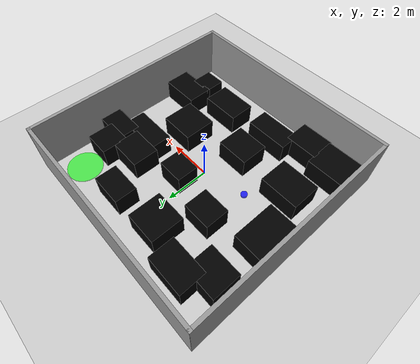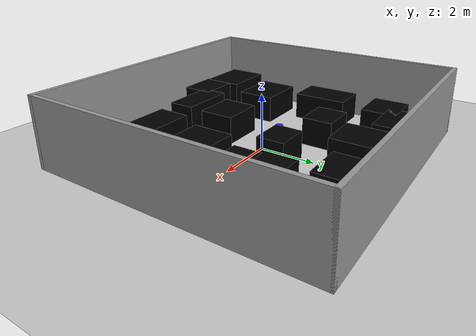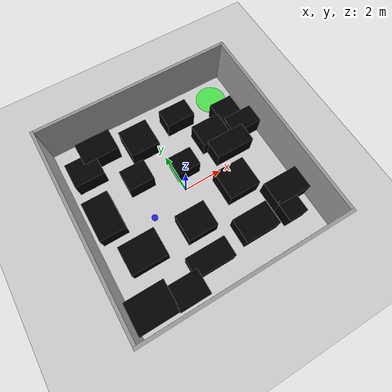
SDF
<?xml version="1.0" ?>
<sdf version="1.6">
  <world name="env_30pct_obstacles">
    <gravity>0 0 -9.8</gravity>

    <!-- Sun & Ground -->
    <include><uri>model://sun</uri></include>
    <include><uri>model://ground_plane</uri></include>

    <!-- Walls -->
    <model name="walls">
      <static>true</static>
      <link name="link">
        <!-- Bottom -->
        <collision name="bottom_collision"><geometry><box><size>10.15 0.15 2.5</size></box></geometry><pose>0 -5 1.25 0 0 0</pose></collision>
        <visual name="wall_bottom"><geometry><box><size>10.15 0.15 2.5</size></box></geometry><pose>0 -5 1.25 0 0 0</pose><material><ambient>0.6 0.6 0.6 1</ambient></material></visual>
        <!-- Top -->
        <collision name="top_collision"><geometry><box><size>10.15 0.15 2.5</size></box></geometry><pose>0 5 1.25 0 0 0</pose></collision>
        <visual name="wall_top"><geometry><box><size>10.15 0.15 2.5</size></box></geometry><pose>0 5 1.25 0 0 0</pose><material><ambient>0.6 0.6 0.6 1</ambient></material></visual>
        <!-- Left -->
        <collision name="left_collision"><geometry><box><size>0.15 10.15 2.5</size></box></geometry><pose>-5 0 1.25 0 0 0</pose></collision>
        <visual name="wall_left"><geometry><box><size>0.15 10.15 2.5</size></box></geometry><pose>-5 0 1.25 0 0 0</pose><material><ambient>0.6 0.6 0.6 1</ambient></material></visual>
        <!-- Right -->
        <collision name="right_collision"><geometry><box><size>0.15 10.15 2.5</size></box></geometry><pose>5 0 1.25 0 0 0</pose></collision>
        <visual name="wall_right"><geometry><box><size>0.15 10.15 2.5</size></box></geometry><pose>5 0 1.25 0 0 0</pose><material><ambient>0.6 0.6 0.6 1</ambient></material></visual>
      </link>
    </model>

    <!-- Start -->
    <model name="start_marker">
      <static>true</static>
      <pose>-1.99 -0.5 0.05 0 0 0</pose>
      <link name="link">
        <collision name="collision"><geometry><cylinder><radius>0.15</radius><length>0.1</length></cylinder></geometry></collision>
        <visual name="visual"><geometry><cylinder><radius>0.15</radius><length>0.1</length></cylinder></geometry><material><ambient>0 0 1 0.8</ambient></material></visual>
      </link>
    </model>

    <!-- Goal -->
    <model name="goal_region">
      <static>true</static>
      <pose>3.8 3.8 0.05 0 0 0</pose>
      <link name="link">
        <collision name="collision"><geometry><cylinder><radius>0.8</radius><length>0.05</length></cylinder></geometry></collision>
        <visual name="visual"><geometry><cylinder><radius>0.8</radius><length>0.05</length></cylinder></geometry><material><ambient>0 1 0 0.6</ambient></material></visual>
      </link>
    </model>

    <!-- Obstacles: 20 total, ~30 m² coverage, path maintained -->
    <!-- All black, solid, rectangular -->

    <!-- Lower left cluster -->
    <model name="obs0"><static>true</static><pose>-4.0 -4.0 0.5 0 0 0</pose>
      <link name="l"><collision name="c"><geometry><box><size>2.0 1.5 1.0</size></box></geometry></collision>
      <visual name="v"><geometry><box><size>2.0 1.5 1.0</size></box></geometry><material><ambient>0 0 0 1</ambient></material></visual></link></model>

    <model name="obs1"><static>true</static><pose>-2.3 -4.2 0.5 0 0 0</pose>
      <link name="l"><collision name="c"><geometry><box><size>1.5 1.2 1.0</size></box></geometry></collision>
      <visual name="v"><geometry><box><size>1.5 1.2 1.0</size></box></geometry><material><ambient>0 0 0 1</ambient></material></visual></link></model>

    <!-- Mid lower barrier -->
    <model name="obs2"><static>true</static><pose>-0.8 -3.5 0.5 0 0 0</pose>
      <link name="l"><collision name="c"><geometry><box><size>2.0 1.0 1.0</size></box></geometry></collision>
      <visual name="v"><geometry><box><size>2.0 1.0 1.0</size></box></geometry><material><ambient>0 0 0 1</ambient></material></visual></link></model>

    <model name="obs3"><static>true</static><pose>1.8 -3.2 0.5 0 0 0</pose>
      <link name="l"><collision name="c"><geometry><box><size>1.8 1.2 1.0</size></box></geometry></collision>
      <visual name="v"><geometry><box><size>1.8 1.2 1.0</size></box></geometry><material><ambient>0 0 0 1</ambient></material></visual></link></model>

    <!-- Central band, leaves diagonal corridor -->
    <model name="obs4"><static>true</static><pose>-3.2 -1.8 0.5 0 0 0</pose>
      <link name="l"><collision name="c"><geometry><box><size>1.8 1.4 1.0</size></box></geometry></collision>
      <visual name="v"><geometry><box><size>1.8 1.4 1.0</size></box></geometry><material><ambient>0 0 0 1</ambient></material></visual></link></model>

    <model name="obs5"><static>true</static><pose>-0.5 -1.8 0.5 0 0 0</pose>
      <link name="l"><collision name="c"><geometry><box><size>1.5 1.3 1.0</size></box></geometry></collision>
      <visual name="v"><geometry><box><size>1.5 1.3 1.0</size></box></geometry><material><ambient>0 0 0 1</ambient></material></visual></link></model>

    <model name="obs6"><static>true</static><pose>2.2 -1.0 0.5 0 0 0</pose>
      <link name="l"><collision name="c"><geometry><box><size>1.6 1.5 1.0</size></box></geometry></collision>
      <visual name="v"><geometry><box><size>1.6 1.5 1.0</size></box></geometry><material><ambient>0 0 0 1</ambient></material></visual></link></model>

    <model name="obs7"><static>true</static><pose>4.0 -2.5 0.5 0 0 0</pose>
      <link name="l"><collision name="c"><geometry><box><size>1.8 1.2 1.0</size></box></geometry></collision>
      <visual name="v"><geometry><box><size>1.8 1.2 1.0</size></box></geometry><material><ambient>0 0 0 1</ambient></material></visual></link></model>

    <!-- Left vertical cluster -->
    <model name="obs8"><static>true</static><pose>-4.0 0.5 0.5 0 0 0</pose>
      <link name="l"><collision name="c"><geometry><box><size>1.3 2.0 1.0</size></box></geometry></collision>
      <visual name="v"><geometry><box><size>1.3 2.0 1.0</size></box></geometry><material><ambient>0 0 0 1</ambient></material></visual></link></model>

    <model name="obs9"><static>true</static><pose>-3.8 3.0 0.5 0 0 0</pose>
      <link name="l"><collision name="c"><geometry><box><size>1.5 1.3 1.0</size></box></geometry></collision>
      <visual name="v"><geometry><box><size>1.5 1.3 1.0</size></box></geometry><material><ambient>0 0 0 1</ambient></material></visual></link></model>

    <!-- Center-right barrier -->
    <model name="obs10"><static>true</static><pose>3.0 0.8 0.5 0 0 0</pose>
      <link name="l"><collision name="c"><geometry><box><size>2.0 1.0 1.0</size></box></geometry></collision>
      <visual name="v"><geometry><box><size>2.0 1.0 1.0</size></box></geometry><material><ambient>0 0 0 1</ambient></material></visual></link></model>

    <!-- Top band (keeps diagonal open) -->
    <model name="obs11"><static>true</static><pose>-2.8 3.8 0.5 0 0 0</pose>
      <link name="l"><collision name="c"><geometry><box><size>1.8 1.2 1.0</size></box></geometry></collision>
      <visual name="v"><geometry><box><size>1.8 1.2 1.0</size></box></geometry><material><ambient>0 0 0 1</ambient></material></visual></link></model>

    <model name="obs12"><static>true</static><pose>-0.8 3.2 0.5 0 0 0</pose>
      <link name="l"><collision name="c"><geometry><box><size>1.5 1.5 1.0</size></box></geometry></collision>
      <visual name="v"><geometry><box><size>1.5 1.5 1.0</size></box></geometry><material><ambient>0 0 0 1</ambient></material></visual></link></model>

    <model name="obs13"><static>true</static><pose>1.5 3.5 0.5 0 0 0</pose>
      <link name="l"><collision name="c"><geometry><box><size>1.5 1.0 1.0</size></box></geometry></collision>
      <visual name="v"><geometry><box><size>1.5 1.0 1.0</size></box></geometry><material><ambient>0 0 0 1</ambient></material></visual></link></model>

    <model name="obs14"><static>true</static><pose>3.8 2.4 0.5 0 0 0</pose>
      <link name="l"><collision name="c"><geometry><box><size>1.2 1.2 1.0</size></box></geometry></collision>
      <visual name="v"><geometry><box><size>1.2 1.2 1.0</size></box></geometry><material><ambient>0 0 0 1</ambient></material></visual></link></model>

    <!-- Top right fillers -->
    <model name="obs15"><static>true</static><pose>3.6 -3.45 0.5 0 0 0</pose>
      <link name="l"><collision name="c"><geometry><box><size>1.0 1.0 1.0</size></box></geometry></collision>
      <visual name="v"><geometry><box><size>1.0 1.0 1.0</size></box></geometry><material><ambient>0 0 0 1</ambient></material></visual></link></model>

    <!-- Sparse mid fillers keeping corridor clear -->
    <model name="obs16"><static>true</static><pose>-1.8 1.5 0.5 0 0 0</pose>
      <link name="l"><collision name="c"><geometry><box><size>1.3 1.1 1.0</size></box></geometry></collision>
      <visual name="v"><geometry><box><size>1.3 1.1 1.0</size></box></geometry><material><ambient>0 0 0 1</ambient></material></visual></link></model>

    <model name="obs17"><static>true</static><pose>0.5 1.0 0.5 0 0 0</pose>
      <link name="l"><collision name="c"><geometry><box><size>1.2 1.0 1.0</size></box></geometry></collision>
      <visual name="v"><geometry><box><size>1.2 1.0 1.0</size></box></geometry><material><ambient>0 0 0 1</ambient></material></visual></link></model>

    <model name="obs18"><static>true</static><pose>2.5 1.8 0.5 0 0 0</pose>
      <link name="l"><collision name="c"><geometry><box><size>1.5 1.2 1.0</size></box></geometry></collision>
      <visual name="v"><geometry><box><size>1.5 1.2 1.0</size></box></geometry><material><ambient>0 0 0 1</ambient></material></visual></link></model>

    <model name="obs19"><static>true</static><pose>4.2 1.5 0.5 0 0 0</pose>
      <link name="l"><collision name="c"><geometry><box><size>1.6 1.0 1.0</size></box></geometry></collision>
      <visual name="v"><geometry><box><size>1.6 1.0 1.0</size></box></geometry><material><ambient>0 0 0 1</ambient></material></visual></link></model>

  </world>
</sdf>
